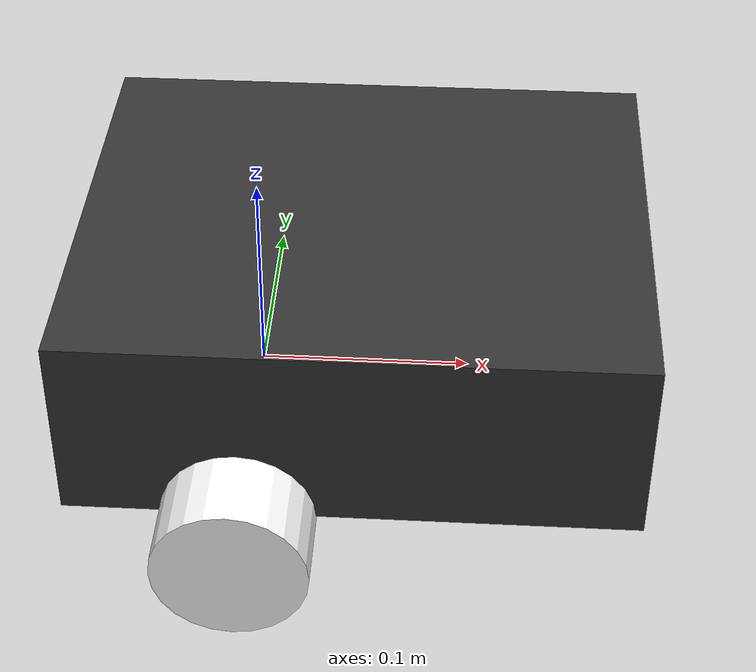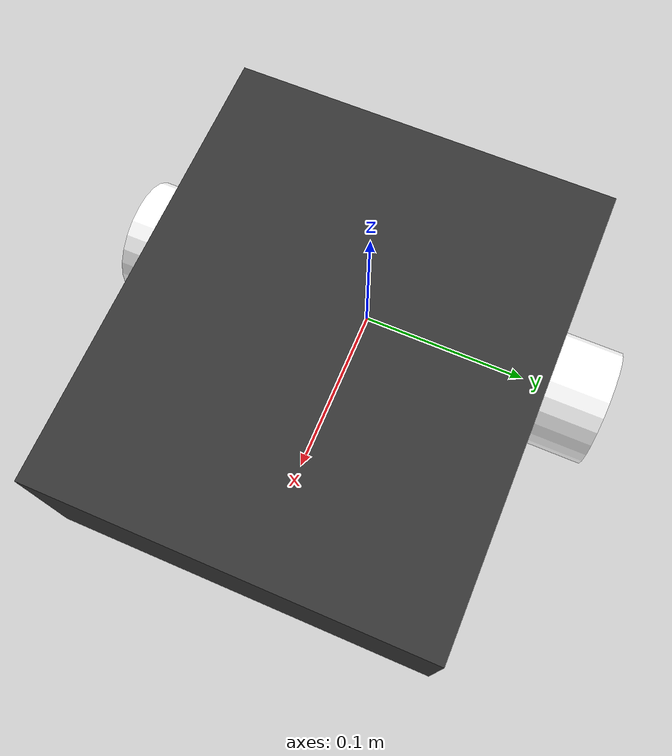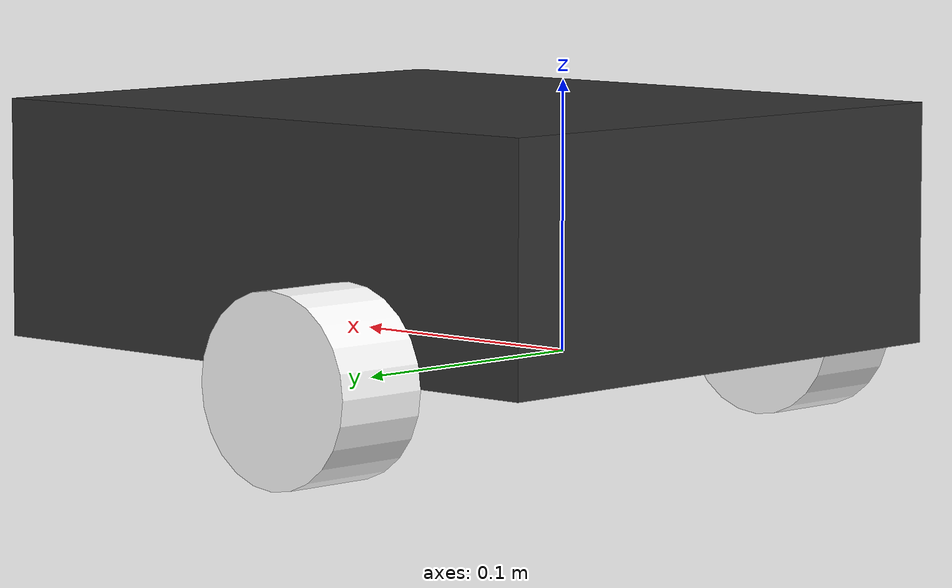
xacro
<?xml version="1.0" ?>
<robot name="robot" xmlns:xacro="http://www.ros.org/wiki/xacro">

  <xacro:include filename="inertial_macros.xacro"/>

  <material name="black">
    <color rgba="0.20 0.20 0.20 1.0"/>
  </material>
  <material name="blue">
    <color rgba="0.203125 0.23828125 0.28515625 1.0"/>
  </material>
  <material name="green">
    <color rgba="0.0 0.8 0.0 1.0"/>
  </material>
  <material name="grey">
    <color rgba="0.2 0.2 0.2 1.0"/>
  </material>
  <material name="orange">
    <color rgba="1.0 0.423529411765 0.0392156862745 1.0"/>
  </material>
  <material name="brown">
    <color rgba="0.870588235294 0.811764705882 0.764705882353 1.0"/>
  </material>
  <material name="red">
    <color rgba="0.80078125 0.12890625 0.1328125 1.0"/>
  </material>
  <material name="white">
    <color rgba="1.0 1.0 1.0 1.0"/>
  </material>

      <!--    BASE LINK   -->
  <link name="base_link"></link>

      <!--    CHASSIS LINK   -->

  <link name="chassis">
    <visual>
      <origin xyz="0.13 0.0 0.045" rpy="0.0 0.0 0.0"/>
      <geometry>
        <box size="0.26 0.22 0.09"/>
      </geometry>
      <material name="black"/>
    </visual>
    <collision>
      <origin xyz="0.13 0.0 0.045" rpy="0.0 0.0 0.0"/>
      <geometry>
        <box size="0.26 0.22 0.09"/>
      </geometry>
    </collision>
    <xacro:inertial_box mass="0.5" x="0.26" y="0.22" z="0.09">
      <origin xyz="0.13 0.0 0.045" rpy="0.0 0.0 0.0"/>
    </xacro:inertial_box>
  </link>

  <joint name="chassis_joint" type="fixed">
    <parent link="base_link"/>
    <child link="chassis"/>
    <origin xyz="-0.08 0.0 0.0"/>
  </joint>

      <!--    LEFT WHEEL LINK   -->

  <joint name="left_joint" type="continuous">
    <parent link="base_link"/>
    <child link="left_wheel"/>
    <origin xyz="0.0 0.13 0.0" rpy="-${pi/2} 0.0 0.0"/>
    <axis xyz="0 0 1"/>
  </joint>

  <link name="left_wheel">
    <visual>
      <geometry>
        <cylinder radius="0.035" length="0.038"/>
      </geometry>
      <material name="white"/>
    </visual>
    <collision>
      <geometry>
        <cylinder radius="0.035" length="0.038"/>
      </geometry>
    </collision>
    <xacro:inertial_cylinder mass="0.1" length="0.038" radius="0.035">
      <origin xyz="0 0 0" rpy="0.0 0.0 0.0"/>
    </xacro:inertial_cylinder>

  </link>

      <!--    right WHEEL LINK   -->

  <joint name="right_joint" type="continuous">
    <parent link="base_link"/>
    <child link="right_wheel"/>
    <origin xyz="0.0 -0.13 0.0" rpy="${pi/2} 0.0 0.0"/>
    <axis xyz="0 0 -1"/>
  </joint>

  <link name="right_wheel">
    <visual name="">
      <geometry>
        <cylinder radius="0.035" length="0.038"/>
      </geometry>
      <material name="white"/>
    </visual>
    <collision name="">
      <geometry>
        <cylinder radius="0.035" length="0.038"/>
      </geometry>
    </collision>
    <xacro:inertial_cylinder mass="0.1" length="0.038" radius="0.035">
      <origin xyz="0 0 0" rpy="0.0 0.0 0.0"/>
    </xacro:inertial_cylinder>
  </link>

    <!-- CASTER WHEEL LINK -->

    <joint name="caster_wheel_joint" type="fixed">
        <parent link="chassis"/>
        <child link="caster_wheel"/>
        <origin xyz="0.225 0 0"/>
    </joint>

    <link name="caster_wheel">
        <visual>
            <geometry>
                <sphere radius="0.035"/>
            </geometry>
            <material name="black"/>
        </visual>
        <collision>
            <geometry>
                <sphere radius="0.035"/>
            </geometry>
        </collision>
        <xacro:inertial_sphere mass="0.1" radius="0.035">
            <origin xyz="0 0 0" rpy="0 0 0"/>
        </xacro:inertial_sphere>
    </link>

    <gazebo reference="caster_wheel">
      <material>
        Gazebo/Black
      </material>
      <mu1 value="0.001"/>
      <mu2 value="0.001"/>
    </gazebo>

</robot>
